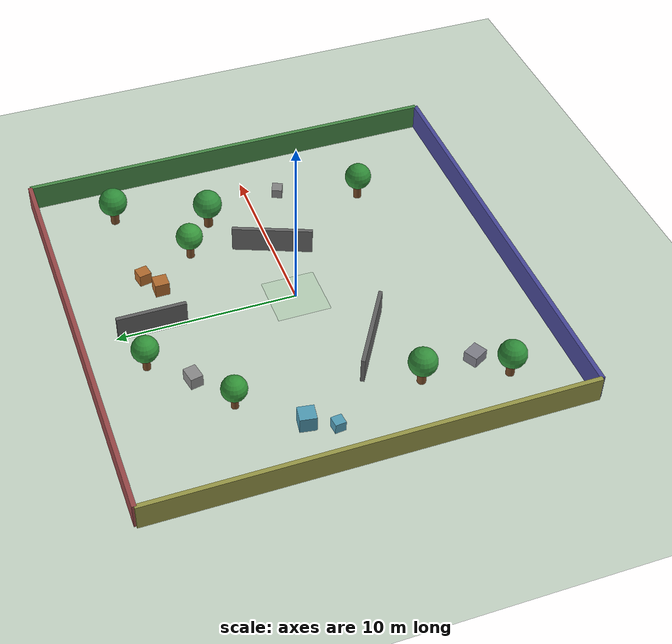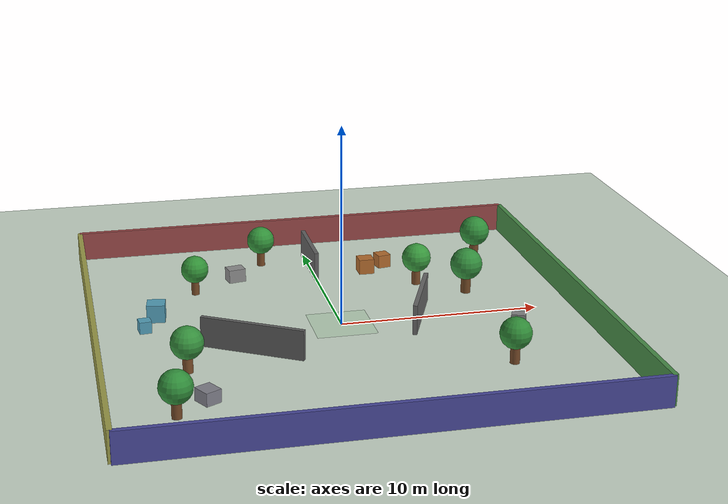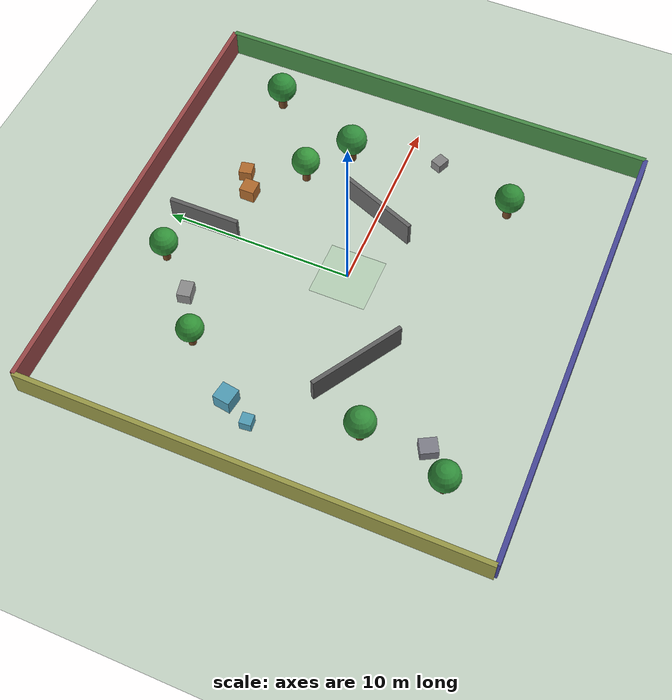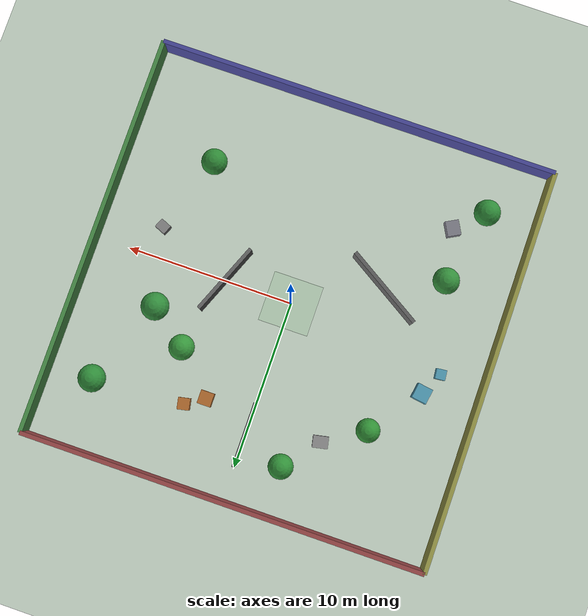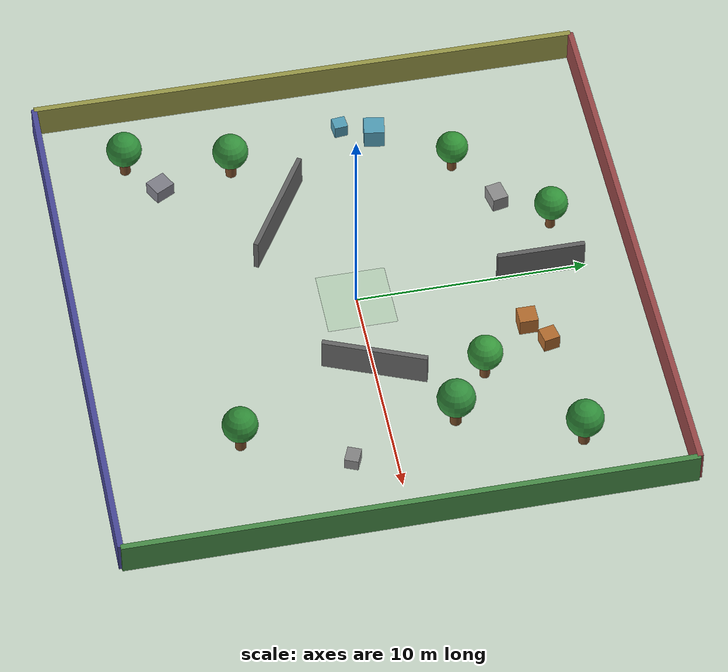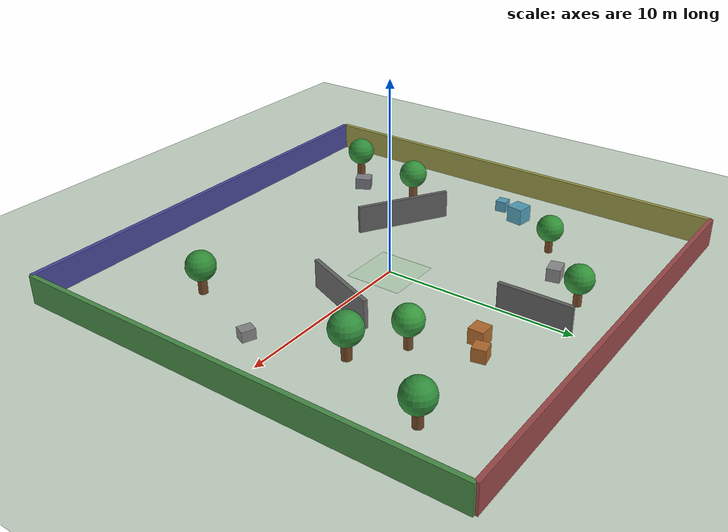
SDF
<?xml version="1.0" ?>
<sdf version="1.8">
  <world name="swarm_world">

    <physics name="1ms" type="ignored">
      <max_step_size>0.001</max_step_size>
      <real_time_factor>1.0</real_time_factor>
    </physics>

    <plugin filename="ignition-gazebo-physics-system"
            name="ignition::gazebo::systems::Physics"/>
    <plugin filename="ignition-gazebo-user-commands-system"
            name="ignition::gazebo::systems::UserCommands"/>
    <plugin filename="ignition-gazebo-scene-broadcaster-system"
            name="ignition::gazebo::systems::SceneBroadcaster"/>
    <plugin filename="ignition-gazebo-sensors-system"
            name="ignition::gazebo::systems::Sensors">
      <render_engine>ogre2</render_engine>
    </plugin>

    <light name="sun" type="directional">
      <cast_shadows>true</cast_shadows>
      <pose>0 0 20 0 0 0</pose>
      <diffuse>0.95 0.95 0.95 1</diffuse>
      <specular>0.25 0.25 0.25 1</specular>
      <direction>-0.4 0.2 -0.9</direction>
    </light>

    <!-- Ground -->
    <model name="ground_plane">
      <static>true</static>
      <link name="link">
        <collision name="collision">
          <geometry>
            <plane>
              <normal>0 0 1</normal>
              <size>60 60</size>
            </plane>
          </geometry>
        </collision>
        <visual name="visual">
          <geometry>
            <plane>
              <normal>0 0 1</normal>
              <size>60 60</size>
            </plane>
          </geometry>
          <material>
            <ambient>0.72 0.78 0.72 1</ambient>
            <diffuse>0.78 0.84 0.78 1</diffuse>
            <specular>0.05 0.05 0.05 1</specular>
          </material>
        </visual>
      </link>
    </model>

    <!-- Outer boundary walls: 24 x 24 arena -->
    <model name="wall_north">
      <static>true</static>
      <pose>0 12 0.75 0 0 0</pose>
      <link name="link">
        <collision name="collision">
          <geometry>
            <box><size>24 0.25 1.5</size></box>
          </geometry>
        </collision>
        <visual name="visual">
          <geometry>
            <box><size>24 0.25 1.5</size></box>
          </geometry>
          <material>
            <ambient>0.45 0.22 0.22 1</ambient>
            <diffuse>0.60 0.28 0.28 1</diffuse>
            <specular>0.08 0.08 0.08 1</specular>
          </material>
        </visual>
      </link>
    </model>

    <model name="wall_south">
      <static>true</static>
      <pose>0 -12 0.75 0 0 0</pose>
      <link name="link">
        <collision name="collision">
          <geometry>
            <box><size>24 0.25 1.5</size></box>
          </geometry>
        </collision>
        <visual name="visual">
          <geometry>
            <box><size>24 0.25 1.5</size></box>
          </geometry>
          <material>
            <ambient>0.22 0.22 0.45 1</ambient>
            <diffuse>0.28 0.28 0.60 1</diffuse>
            <specular>0.08 0.08 0.08 1</specular>
          </material>
        </visual>
      </link>
    </model>

    <model name="wall_east">
      <static>true</static>
      <pose>12 0 0.75 0 0 0</pose>
      <link name="link">
        <collision name="collision">
          <geometry>
            <box><size>0.25 24 1.5</size></box>
          </geometry>
        </collision>
        <visual name="visual">
          <geometry>
            <box><size>0.25 24 1.5</size></box>
          </geometry>
          <material>
            <ambient>0.20 0.42 0.20 1</ambient>
            <diffuse>0.28 0.55 0.28 1</diffuse>
            <specular>0.08 0.08 0.08 1</specular>
          </material>
        </visual>
      </link>
    </model>

    <model name="wall_west">
      <static>true</static>
      <pose>-12 0 0.75 0 0 0</pose>
      <link name="link">
        <collision name="collision">
          <geometry>
            <box><size>0.25 24 1.5</size></box>
          </geometry>
        </collision>
        <visual name="visual">
          <geometry>
            <box><size>0.25 24 1.5</size></box>
          </geometry>
          <material>
            <ambient>0.45 0.45 0.20 1</ambient>
            <diffuse>0.60 0.60 0.28 1</diffuse>
            <specular>0.08 0.08 0.08 1</specular>
          </material>
        </visual>
      </link>
    </model>

    <!-- SAFE START ZONE: keep center area clear of obstacles   -->
    <!-- Suggested spawn area: roughly x in [-1.0, 1.0], y in [-1.0, 1.0] -->

    <!-- Light visual marker for the safe zone -->
    <model name="start_zone_marker">
      <static>true</static>
      <pose>0 0 0.005 0 0 0</pose>
      <link name="link">
        <visual name="visual">
          <geometry>
            <box><size>3.0 3.0 0.01</size></box>
          </geometry>
          <material>
            <ambient>0.70 0.85 0.70 0.45</ambient>
            <diffuse>0.70 0.85 0.70 0.45</diffuse>
            <specular>0.02 0.02 0.02 0.45</specular>
          </material>
        </visual>
      </link>
    </model>

    <!-- NATURAL "TREE" OBSTACLES: cylinder trunk + canopy      -->

    <model name="tree_1">
      <static>true</static>
      <pose>5.0 4.5 0 0 0 0</pose>
      <link name="trunk">
        <collision name="trunk_collision">
          <pose>0 0 0.6 0 0 0</pose>
          <geometry>
            <cylinder><radius>0.22</radius><length>1.2</length></cylinder>
          </geometry>
        </collision>
        <visual name="trunk_visual">
          <pose>0 0 0.6 0 0 0</pose>
          <geometry>
            <cylinder><radius>0.22</radius><length>1.2</length></cylinder>
          </geometry>
          <material>
            <ambient>0.38 0.24 0.12 1</ambient>
            <diffuse>0.48 0.30 0.16 1</diffuse>
            <specular>0.05 0.05 0.05 1</specular>
          </material>
        </visual>
        <visual name="canopy_visual">
          <pose>0 0 1.45 0 0 0</pose>
          <geometry>
            <sphere><radius>0.75</radius></sphere>
          </geometry>
          <material>
            <ambient>0.16 0.45 0.18 1</ambient>
            <diffuse>0.22 0.60 0.24 1</diffuse>
            <specular>0.04 0.04 0.04 1</specular>
          </material>
        </visual>
      </link>
    </model>

    <model name="tree_2">
      <static>true</static>
      <pose>7.2 2.8 0 0 0 0</pose>
      <link name="trunk">
        <collision name="trunk_collision">
          <pose>0 0 0.65 0 0 0</pose>
          <geometry>
            <cylinder><radius>0.25</radius><length>1.3</length></cylinder>
          </geometry>
        </collision>
        <visual name="trunk_visual">
          <pose>0 0 0.65 0 0 0</pose>
          <geometry>
            <cylinder><radius>0.25</radius><length>1.3</length></cylinder>
          </geometry>
          <material>
            <ambient>0.35 0.22 0.10 1</ambient>
            <diffuse>0.44 0.28 0.14 1</diffuse>
            <specular>0.05 0.05 0.05 1</specular>
          </material>
        </visual>
        <visual name="canopy_visual">
          <pose>0 0 1.55 0 0 0</pose>
          <geometry>
            <sphere><radius>0.82</radius></sphere>
          </geometry>
          <material>
            <ambient>0.14 0.42 0.18 1</ambient>
            <diffuse>0.20 0.56 0.24 1</diffuse>
            <specular>0.04 0.04 0.04 1</specular>
          </material>
        </visual>
      </link>
    </model>

    <model name="tree_3">
      <static>true</static>
      <pose>-6.5 5.5 0 0 0 0</pose>
      <link name="trunk">
        <collision name="trunk_collision">
          <pose>0 0 0.55 0 0 0</pose>
          <geometry>
            <cylinder><radius>0.20</radius><length>1.1</length></cylinder>
          </geometry>
        </collision>
        <visual name="trunk_visual">
          <pose>0 0 0.55 0 0 0</pose>
          <geometry>
            <cylinder><radius>0.20</radius><length>1.1</length></cylinder>
          </geometry>
          <material>
            <ambient>0.36 0.23 0.11 1</ambient>
            <diffuse>0.46 0.29 0.15 1</diffuse>
            <specular>0.05 0.05 0.05 1</specular>
          </material>
        </visual>
        <visual name="canopy_visual">
          <pose>0 0 1.35 0 0 0</pose>
          <geometry>
            <sphere><radius>0.70</radius></sphere>
          </geometry>
          <material>
            <ambient>0.15 0.44 0.17 1</ambient>
            <diffuse>0.20 0.58 0.22 1</diffuse>
            <specular>0.04 0.04 0.04 1</specular>
          </material>
        </visual>
      </link>
    </model>

    <model name="tree_4">
      <static>true</static>
      <pose>-8.0 -4.0 0 0 0 0</pose>
      <link name="trunk">
        <collision name="trunk_collision">
          <pose>0 0 0.6 0 0 0</pose>
          <geometry>
            <cylinder><radius>0.24</radius><length>1.2</length></cylinder>
          </geometry>
        </collision>
        <visual name="trunk_visual">
          <pose>0 0 0.6 0 0 0</pose>
          <geometry>
            <cylinder><radius>0.24</radius><length>1.2</length></cylinder>
          </geometry>
          <material>
            <ambient>0.38 0.24 0.12 1</ambient>
            <diffuse>0.48 0.30 0.16 1</diffuse>
            <specular>0.05 0.05 0.05 1</specular>
          </material>
        </visual>
        <visual name="canopy_visual">
          <pose>0 0 1.45 0 0 0</pose>
          <geometry>
            <sphere><radius>0.78</radius></sphere>
          </geometry>
          <material>
            <ambient>0.15 0.43 0.18 1</ambient>
            <diffuse>0.21 0.57 0.24 1</diffuse>
            <specular>0.04 0.04 0.04 1</specular>
          </material>
        </visual>
      </link>
    </model>

    <model name="tree_5">
      <static>true</static>
      <pose>6.8 -6.2 0 0 0 0</pose>
      <link name="trunk">
        <collision name="trunk_collision">
          <pose>0 0 0.62 0 0 0</pose>
          <geometry>
            <cylinder><radius>0.23</radius><length>1.24</length></cylinder>
          </geometry>
        </collision>
        <visual name="trunk_visual">
          <pose>0 0 0.62 0 0 0</pose>
          <geometry>
            <cylinder><radius>0.23</radius><length>1.24</length></cylinder>
          </geometry>
          <material>
            <ambient>0.36 0.22 0.11 1</ambient>
            <diffuse>0.45 0.28 0.15 1</diffuse>
            <specular>0.05 0.05 0.05 1</specular>
          </material>
        </visual>
        <visual name="canopy_visual">
          <pose>0 0 1.48 0 0 0</pose>
          <geometry>
            <sphere><radius>0.76</radius></sphere>
          </geometry>
          <material>
            <ambient>0.14 0.41 0.16 1</ambient>
            <diffuse>0.19 0.55 0.22 1</diffuse>
            <specular>0.04 0.04 0.04 1</specular>
          </material>
        </visual>
      </link>
    </model>

    <!-- ROCKS / BOULDERS                                       -->

    <model name="rock_1">
      <static>true</static>
      <pose>-4.2 7.0 0.35 0 0 0.2</pose>
      <link name="link">
        <collision name="collision">
          <geometry>
            <box><size>0.9 0.7 0.7</size></box>
          </geometry>
        </collision>
        <visual name="visual">
          <geometry>
            <box><size>0.9 0.7 0.7</size></box>
          </geometry>
          <material>
            <ambient>0.42 0.42 0.42 1</ambient>
            <diffuse>0.55 0.55 0.55 1</diffuse>
            <specular>0.06 0.06 0.06 1</specular>
          </material>
        </visual>
      </link>
    </model>

    <model name="rock_2">
      <static>true</static>
      <pose>8.5 -1.8 0.28 0 0 -0.4</pose>
      <link name="link">
        <collision name="collision">
          <geometry>
            <box><size>0.7 0.6 0.55</size></box>
          </geometry>
        </collision>
        <visual name="visual">
          <geometry>
            <box><size>0.7 0.6 0.55</size></box>
          </geometry>
          <material>
            <ambient>0.40 0.40 0.40 1</ambient>
            <diffuse>0.52 0.52 0.52 1</diffuse>
            <specular>0.06 0.06 0.06 1</specular>
          </material>
        </visual>
      </link>
    </model>

    <model name="rock_3">
      <static>true</static>
      <pose>-7.5 -7.2 0.32 0 0 0.5</pose>
      <link name="link">
        <collision name="collision">
          <geometry>
            <box><size>0.8 0.9 0.64</size></box>
          </geometry>
        </collision>
        <visual name="visual">
          <geometry>
            <box><size>0.8 0.9 0.64</size></box>
          </geometry>
          <material>
            <ambient>0.38 0.38 0.40 1</ambient>
            <diffuse>0.50 0.50 0.54 1</diffuse>
            <specular>0.06 0.06 0.06 1</specular>
          </material>
        </visual>
      </link>
    </model>

    <!-- STRUCTURED OBSTACLES / CORRIDORS                       -->

  <model name="inner_wall_1">
    <static>true</static>
    <pose>4.0 0.0 0.75 0 0 1.185398</pose>
    <link name="link">
      <collision name="collision">
        <geometry>
          <box><size>4.5 0.22 1.5</size></box>
        </geometry>
      </collision>
      <visual name="visual">
        <geometry>
          <box><size>4.5 0.22 1.5</size></box>
        </geometry>
        <material>
          <ambient>0.30 0.30 0.30 1</ambient>
          <diffuse>0.40 0.40 0.40 1</diffuse>
          <specular>0.06 0.06 0.06 1</specular>
        </material>
      </visual>
    </link>
  </model>

    <model name="inner_wall_2">
      <static>true</static>
      <pose>-4.8 -2.5 0.75 0 0 -0.55</pose>
      <link name="link">
        <collision name="collision">
          <geometry>
            <box><size>5.2 0.22 1.5</size></box>
          </geometry>
        </collision>
        <visual name="visual">
          <geometry>
            <box><size>5.2 0.22 1.5</size></box>
          </geometry>
          <material>
            <ambient>0.28 0.28 0.28 1</ambient>
            <diffuse>0.38 0.38 0.38 1</diffuse>
            <specular>0.06 0.06 0.06 1</specular>
          </material>
        </visual>
      </link>
    </model>

    <model name="inner_wall_3">
      <static>true</static>
      <pose>0.0 8.0 0.75 0 0 1.57</pose>
      <link name="link">
        <collision name="collision">
          <geometry>
            <box><size>3.8 0.22 1.5</size></box>
          </geometry>
        </collision>
        <visual name="visual">
          <geometry>
            <box><size>3.8 0.22 1.5</size></box>
          </geometry>
          <material>
            <ambient>0.28 0.28 0.28 1</ambient>
            <diffuse>0.38 0.38 0.38 1</diffuse>
            <specular>0.06 0.06 0.06 1</specular>
          </material>
        </visual>
      </link>
    </model>

    <!-- SMALL OBSTACLE CLUSTERS                                -->

    <model name="crate_1">
      <static>true</static>
      <pose>2.8 6.8 0.4 0 0 0</pose>
      <link name="link">
        <collision name="collision">
          <geometry>
            <box><size>0.8 0.8 0.8</size></box>
          </geometry>
        </collision>
        <visual name="visual">
          <geometry>
            <box><size>0.8 0.8 0.8</size></box>
          </geometry>
          <material>
            <ambient>0.58 0.34 0.15 1</ambient>
            <diffuse>0.70 0.42 0.18 1</diffuse>
            <specular>0.05 0.05 0.05 1</specular>
          </material>
        </visual>
      </link>
    </model>

    <model name="crate_2">
      <static>true</static>
      <pose>3.9 7.5 0.35 0 0 0.2</pose>
      <link name="link">
        <collision name="collision">
          <geometry>
            <box><size>0.7 0.7 0.7</size></box>
          </geometry>
        </collision>
        <visual name="visual">
          <geometry>
            <box><size>0.7 0.7 0.7</size></box>
          </geometry>
          <material>
            <ambient>0.58 0.34 0.15 1</ambient>
            <diffuse>0.70 0.42 0.18 1</diffuse>
            <specular>0.05 0.05 0.05 1</specular>
          </material>
        </visual>
      </link>
    </model>

    <model name="crate_3">
      <static>true</static>
      <pose>-8.8 2.5 0.45 0 0 -0.15</pose>
      <link name="link">
        <collision name="collision">
          <geometry>
            <box><size>0.9 0.9 0.9</size></box>
          </geometry>
        </collision>
        <visual name="visual">
          <geometry>
            <box><size>0.9 0.9 0.9</size></box>
          </geometry>
          <material>
            <ambient>0.25 0.48 0.58 1</ambient>
            <diffuse>0.32 0.62 0.72 1</diffuse>
            <specular>0.05 0.05 0.05 1</specular>
          </material>
        </visual>
      </link>
    </model>

    <model name="crate_4">
      <static>true</static>
      <pose>-9.5 1.1 0.30 0 0 0.1</pose>
      <link name="link">
        <collision name="collision">
          <geometry>
            <box><size>0.6 0.6 0.6</size></box>
          </geometry>
        </collision>
        <visual name="visual">
          <geometry>
            <box><size>0.6 0.6 0.6</size></box>
          </geometry>
          <material>
            <ambient>0.25 0.48 0.58 1</ambient>
            <diffuse>0.32 0.62 0.72 1</diffuse>
            <specular>0.05 0.05 0.05 1</specular>
          </material>
        </visual>
      </link>
    </model>

    <!-- EXTRA TREE GROUPS FAR FROM CENTER                      -->

    <model name="tree_6">
      <static>true</static>
      <pose>-2.5 9.0 0 0 0 0</pose>
      <link name="trunk">
        <collision name="trunk_collision">
          <pose>0 0 0.58 0 0 0</pose>
          <geometry>
            <cylinder><radius>0.21</radius><length>1.16</length></cylinder>
          </geometry>
        </collision>
        <visual name="trunk_visual">
          <pose>0 0 0.58 0 0 0</pose>
          <geometry>
            <cylinder><radius>0.21</radius><length>1.16</length></cylinder>
          </geometry>
          <material>
            <ambient>0.37 0.23 0.12 1</ambient>
            <diffuse>0.47 0.29 0.15 1</diffuse>
            <specular>0.05 0.05 0.05 1</specular>
          </material>
        </visual>
        <visual name="canopy_visual">
          <pose>0 0 1.42 0 0 0</pose>
          <geometry>
            <sphere><radius>0.73</radius></sphere>
          </geometry>
          <material>
            <ambient>0.15 0.44 0.18 1</ambient>
            <diffuse>0.20 0.58 0.23 1</diffuse>
            <specular>0.04 0.04 0.04 1</specular>
          </material>
        </visual>
      </link>
    </model>

    <model name="tree_7">
      <static>true</static>
      <pose>9.2 7.8 0 0 0 0</pose>
      <link name="trunk">
        <collision name="trunk_collision">
          <pose>0 0 0.63 0 0 0</pose>
          <geometry>
            <cylinder><radius>0.24</radius><length>1.26</length></cylinder>
          </geometry>
        </collision>
        <visual name="trunk_visual">
          <pose>0 0 0.63 0 0 0</pose>
          <geometry>
            <cylinder><radius>0.24</radius><length>1.26</length></cylinder>
          </geometry>
          <material>
            <ambient>0.36 0.22 0.11 1</ambient>
            <diffuse>0.45 0.28 0.15 1</diffuse>
            <specular>0.05 0.05 0.05 1</specular>
          </material>
        </visual>
        <visual name="canopy_visual">
          <pose>0 0 1.50 0 0 0</pose>
          <geometry>
            <sphere><radius>0.80</radius></sphere>
          </geometry>
          <material>
            <ambient>0.14 0.42 0.17 1</ambient>
            <diffuse>0.19 0.56 0.23 1</diffuse>
            <specular>0.04 0.04 0.04 1</specular>
          </material>
        </visual>
      </link>
    </model>

    <model name="tree_8">
      <static>true</static>
      <pose>-9.0 -8.5 0 0 0 0</pose>
      <link name="trunk">
        <collision name="trunk_collision">
          <pose>0 0 0.60 0 0 0</pose>
          <geometry>
            <cylinder><radius>0.23</radius><length>1.2</length></cylinder>
          </geometry>
        </collision>
        <visual name="trunk_visual">
          <pose>0 0 0.60 0 0 0</pose>
          <geometry>
            <cylinder><radius>0.23</radius><length>1.2</length></cylinder>
          </geometry>
          <material>
            <ambient>0.36 0.22 0.11 1</ambient>
            <diffuse>0.45 0.28 0.15 1</diffuse>
            <specular>0.05 0.05 0.05 1</specular>
          </material>
        </visual>
        <visual name="canopy_visual">
          <pose>0 0 1.45 0 0 0</pose>
          <geometry>
            <sphere><radius>0.77</radius></sphere>
          </geometry>
          <material>
            <ambient>0.14 0.42 0.17 1</ambient>
            <diffuse>0.19 0.56 0.23 1</diffuse>
            <specular>0.04 0.04 0.04 1</specular>
          </material>
        </visual>
      </link>
    </model>

  </world>
</sdf>
